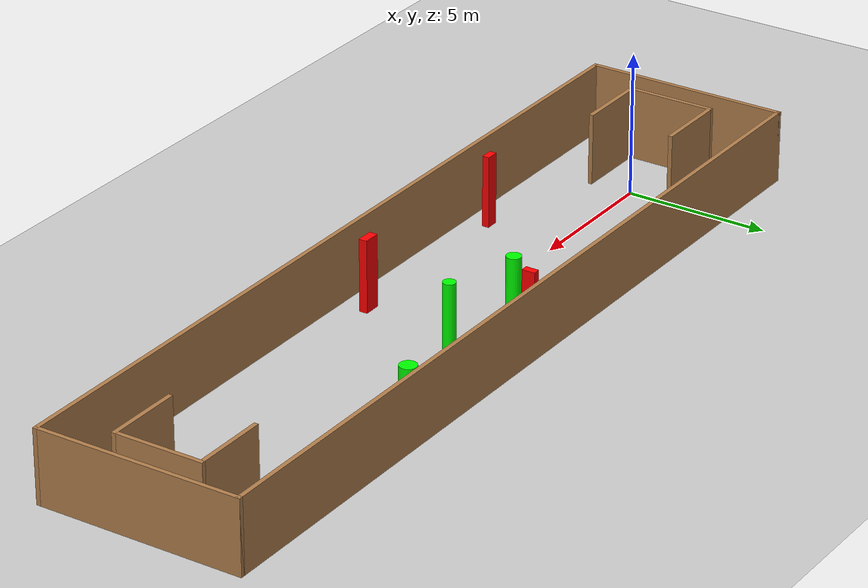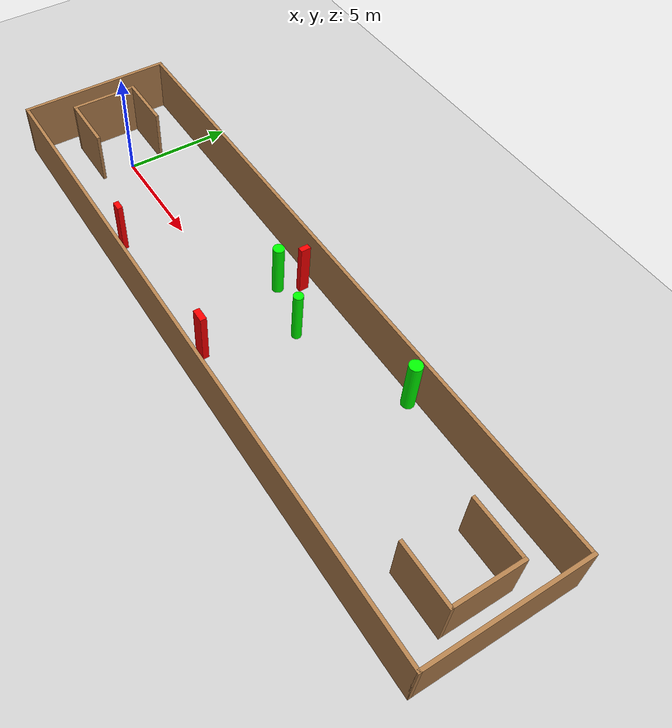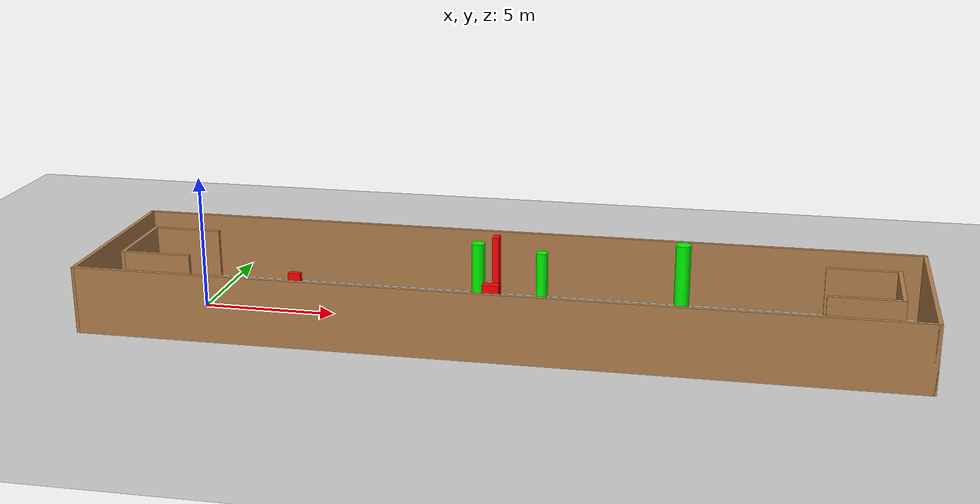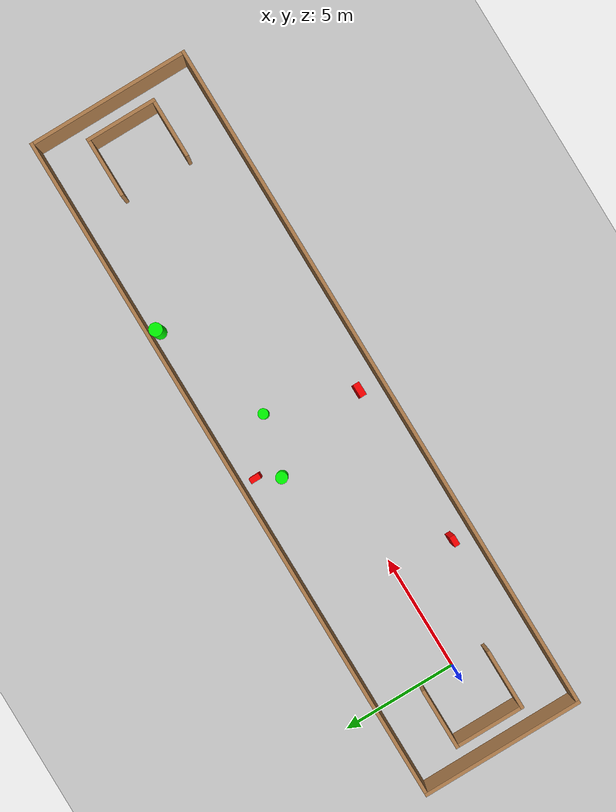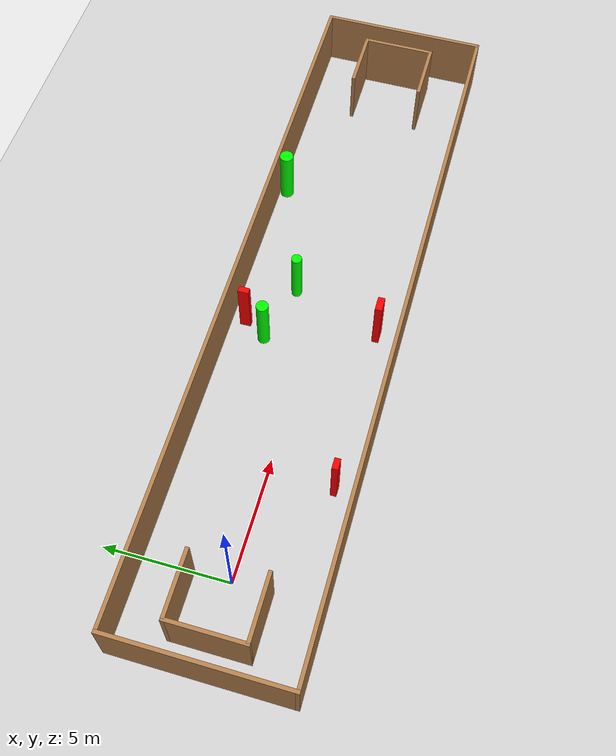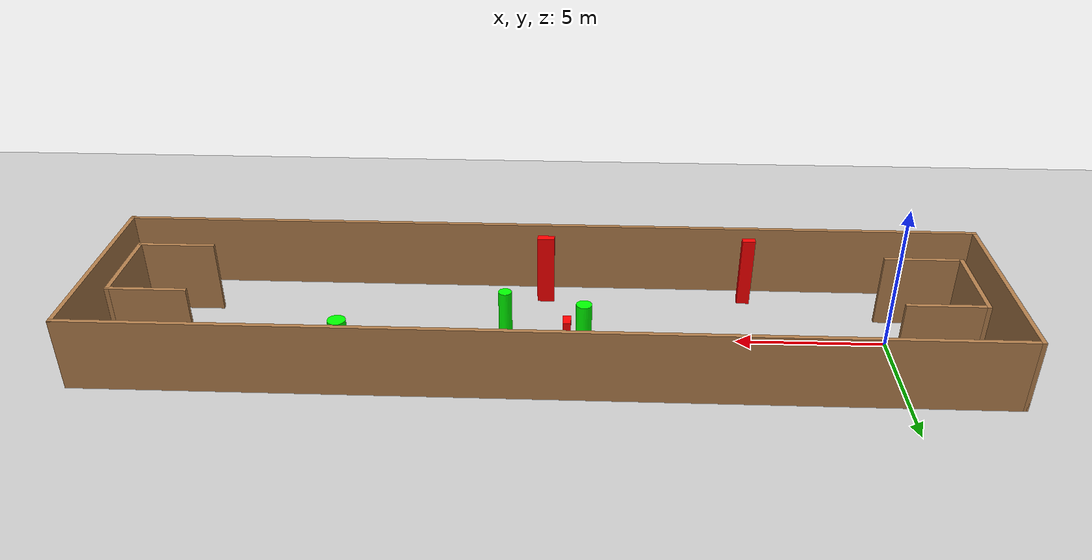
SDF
<sdf version="1.7">
 <world name="default">
  <light name="sun" type="directional">
   <pose>0 0 10 0 -0 0</pose>
   <diffuse>0.8 0.8 0.8 1</diffuse>
   <specular>0.2 0.2 0.2 1</specular>
   <attenuation>
    <range>1000</range>
    <constant>0.9</constant>
    <linear>0.01</linear>
    <quadratic>0.001</quadratic>
   </attenuation>
   <direction>-0.5 0.1 -0.9</direction>
   <spot><inner_angle>0</inner_angle><outer_angle>0</outer_angle><falloff>0</falloff></spot>
  </light>
  <model name="ground_plane">
   <static>1</static>
   <link name="link">
    <collision name="collision">
     <geometry><plane><normal>0 0 1</normal><size>100 100</size></plane></geometry>
     <surface>
      <contact><collide_bitmask>65535</collide_bitmask></contact>
      <friction><ode><mu>100</mu><mu2>50</mu2></ode></friction>
     </surface>
    </collision>
    <visual name="visual">
     <cast_shadows>0</cast_shadows>
     <geometry><plane><normal>0 0 1</normal><size>100 100</size></plane></geometry>
     <material>
      <script><uri>file://media/materials/scripts/gazebo.material</uri><name>Gazebo/Grey</name></script>
     </material>
    </visual>
   </link>
  </model>
  <gravity>0 0 -9.8</gravity>
  <magnetic_field>6e-06 2.3e-05 -4.2e-05</magnetic_field>
  <atmosphere type="adiabatic"/>
  <physics type="ode">
   <max_step_size>0.001</max_step_size>
   <real_time_factor>1</real_time_factor>
   <real_time_update_rate>1000</real_time_update_rate>
  </physics>
  <scene><ambient>0.4 0.4 0.4 1</ambient><background>0.7 0.7 0.7 1</background><shadows>1</shadows></scene>
  <spherical_coordinates>
   <surface_model>EARTH_WGS84</surface_model>
   <latitude_deg>0</latitude_deg>
   <longitude_deg>0</longitude_deg>
   <elevation>0</elevation>
   <heading_deg>0</heading_deg>
  </spherical_coordinates>
  <model name="my_base_walls">
   <link name="Wall_0">
    <collision name="Wall_0_Collision">
     <geometry><box><size>7.15 0.15 2.5</size></box></geometry>
     <pose>0 0 1.25 0 -0 0</pose>
    </collision>
    <visual name="Wall_0_Visual">
     <pose>0 0 1.25 0 -0 0</pose>
     <geometry><box><size>7.15 0.15 2.5</size></box></geometry>
     <material>
      <script><uri>file://media/materials/scripts/gazebo.material</uri><name>Gazebo/Wood</name></script>
      <ambient>1 1 1 1</ambient>
     </material>
     <meta><layer>0</layer></meta>
    </visual>
    <pose>-15 0 0 0 -0 1.5708</pose>
   </link>
   <link name="Wall_10">
    <collision name="Wall_10_Collision">
     <geometry><box><size>2.65 0.15 2.5</size></box></geometry>
     <pose>0 0 1.25 0 -0 0</pose>
    </collision>
    <visual name="Wall_10_Visual">
     <pose>0 0 1.25 0 -0 0</pose>
     <geometry><box><size>2.65 0.15 2.5</size></box></geometry>
     <material>
      <script><uri>file://media/materials/scripts/gazebo.material</uri><name>Gazebo/Wood</name></script>
      <ambient>1 1 1 1</ambient>
     </material>
     <meta><layer>0</layer></meta>
    </visual>
    <pose>-12.75 -1.5 0 0 -0 0</pose>
   </link>
   <link name="Wall_12">
    <collision name="Wall_12_Collision">
     <geometry><box><size>2.65 0.15 2.5</size></box></geometry>
     <pose>0 0 1.25 0 -0 0</pose>
    </collision>
    <visual name="Wall_12_Visual">
     <pose>0 0 1.25 0 -0 0</pose>
     <geometry><box><size>2.65 0.15 2.5</size></box></geometry>
     <material>
      <script><uri>file://media/materials/scripts/gazebo.material</uri><name>Gazebo/Wood</name></script>
      <ambient>1 1 1 1</ambient>
     </material>
     <meta><layer>0</layer></meta>
    </visual>
    <pose>-12.75 1.5 0 0 -0 0</pose>
   </link>
   <link name="Wall_14">
    <collision name="Wall_14_Collision">
     <geometry><box><size>3.15 0.15 2.5</size></box></geometry>
     <pose>0 0 1.25 0 -0 0</pose>
    </collision>
    <visual name="Wall_14_Visual">
     <pose>0 0 1.25 0 -0 0</pose>
     <geometry><box><size>3.15 0.15 2.5</size></box></geometry>
     <material>
      <script><uri>file://media/materials/scripts/gazebo.material</uri><name>Gazebo/Wood</name></script>
      <ambient>1 1 1 1</ambient>
     </material>
     <meta><layer>0</layer></meta>
    </visual>
    <pose>14 0 0 0 -0 -1.5708</pose>
   </link>
   <link name="Wall_15">
    <collision name="Wall_15_Collision">
     <geometry><box><size>2.65 0.15 2.5</size></box></geometry>
     <pose>0 0 1.25 0 -0 0</pose>
    </collision>
    <visual name="Wall_15_Visual">
     <pose>0 0 1.25 0 -0 0</pose>
     <geometry><box><size>2.65 0.15 2.5</size></box></geometry>
     <material>
      <script><uri>file://media/materials/scripts/gazebo.material</uri><name>Gazebo/Wood</name></script>
      <ambient>1 1 1 1</ambient>
     </material>
     <meta><layer>0</layer></meta>
    </visual>
    <pose>12.75 -1.5 0 0 -0 3.14159</pose>
   </link>
   <link name="Wall_17">
    <collision name="Wall_17_Collision">
     <geometry><box><size>2.65 0.15 2.5</size></box></geometry>
     <pose>0 0 1.25 0 -0 0</pose>
    </collision>
    <visual name="Wall_17_Visual">
     <pose>0 0 1.25 0 -0 0</pose>
     <geometry><box><size>2.65 0.15 2.5</size></box></geometry>
     <material>
      <script><uri>file://media/materials/scripts/gazebo.material</uri><name>Gazebo/Wood</name></script>
      <ambient>1 1 1 1</ambient>
     </material>
     <meta><layer>0</layer></meta>
    </visual>
    <pose>12.75 1.5 0 0 -0 3.14159</pose>
   </link>
   <link name="Wall_2">
    <collision name="Wall_2_Collision">
     <geometry><box><size>30.15 0.15 2.5</size></box></geometry>
     <pose>0 0 1.25 0 -0 0</pose>
    </collision>
    <visual name="Wall_2_Visual">
     <pose>0 0 1.25 0 -0 0</pose>
     <geometry><box><size>30.15 0.15 2.5</size></box></geometry>
     <material>
      <script><uri>file://media/materials/scripts/gazebo.material</uri><name>Gazebo/Wood</name></script>
      <ambient>1 1 1 1</ambient>
     </material>
     <meta><layer>0</layer></meta>
    </visual>
    <pose>-0 -3.5 0 0 -0 0</pose>
   </link>
   <link name="Wall_4">
    <collision name="Wall_4_Collision">
     <geometry><box><size>30.15 0.15 2.5</size></box></geometry>
     <pose>0 0 1.25 0 -0 0</pose>
    </collision>
    <visual name="Wall_4_Visual">
     <pose>0 0 1.25 0 -0 0</pose>
     <geometry><box><size>30.15 0.15 2.5</size></box></geometry>
     <material>
      <script><uri>file://media/materials/scripts/gazebo.material</uri><name>Gazebo/Wood</name></script>
      <ambient>1 1 1 1</ambient>
     </material>
     <meta><layer>0</layer></meta>
    </visual>
    <pose>-0 3.5 0 0 -0 0</pose>
   </link>
   <link name="Wall_6">
    <collision name="Wall_6_Collision">
     <geometry><box><size>7.15 0.15 2.5</size></box></geometry>
     <pose>0 0 1.25 0 -0 0</pose>
    </collision>
    <visual name="Wall_6_Visual">
     <pose>0 0 1.25 0 -0 0</pose>
     <geometry><box><size>7.15 0.15 2.5</size></box></geometry>
     <material>
      <script><uri>file://media/materials/scripts/gazebo.material</uri><name>Gazebo/Wood</name></script>
      <ambient>1 1 1 1</ambient>
     </material>
     <meta><layer>0</layer></meta>
    </visual>
    <pose>15 0 0 0 -0 -1.5708</pose>
   </link>
   <link name="Wall_9">
    <collision name="Wall_9_Collision">
     <geometry><box><size>3.15 0.15 2.5</size></box></geometry>
     <pose>0 0 1.25 0 -0 0</pose>
    </collision>
    <visual name="Wall_9_Visual">
     <pose>0 0 1.25 0 -0 0</pose>
     <geometry><box><size>3.15 0.15 2.5</size></box></geometry>
     <material>
      <script><uri>file://media/materials/scripts/gazebo.material</uri><name>Gazebo/Wood</name></script>
      <ambient>1 1 1 1</ambient>
     </material>
     <meta><layer>0</layer></meta>
    </visual>
    <pose>-14 0 0 0 -0 -1.5708</pose>
   </link>
   <static>1</static>
   <pose>11.5 0 0 0 -0 0</pose>
  </model>
  <model name="cylinder1">
   <static>1</static>
   <link name="link">
    <inertial>
     <mass>1</mass>
     <inertia><ixx>0.5</ixx><ixy>0</ixy><ixz>0</ixz><iyy>0.5</iyy><iyz>0</iyz><izz>1</izz></inertia>
    </inertial>
    <collision name="collision">
     <geometry><cylinder><radius>0.2864718964308145</radius><length>2.5</length></cylinder></geometry>
    </collision>
    <visual name="visual">
     <geometry><cylinder><radius>0.2864718964308145</radius><length>2.5</length></cylinder></geometry>
     <material>
      <ambient>0 1 0 1</ambient>
      <diffuse>0 1 0 1</diffuse>
      <specular>0.1 0.1 0.1 1</specular>
      <emissive>0 0 0 0</emissive>
     </material>
    </visual>
   </link>
   <pose>17.728232817294682 3.1218830115783494 1.25 0 0 0</pose>
  </model>
  <model name="cylinder2">
   <static>1</static>
   <link name="link">
    <inertial>
     <mass>1</mass>
     <inertia><ixx>0.5</ixx><ixy>0</ixy><ixz>0</ixz><iyy>0.5</iyy><iyz>0</iyz><izz>1</izz></inertia>
    </inertial>
    <collision name="collision">
     <geometry><cylinder><radius>0.2523031684073014</radius><length>2.5</length></cylinder></geometry>
    </collision>
    <visual name="visual">
     <geometry><cylinder><radius>0.2523031684073014</radius><length>2.5</length></cylinder></geometry>
     <material>
      <ambient>0 1 0 1</ambient>
      <diffuse>0 1 0 1</diffuse>
      <specular>0.1 0.1 0.1 1</specular>
      <emissive>0 0 0 0</emissive>
     </material>
    </visual>
   </link>
   <pose>10.150864386148335 1.9028028505956183 1.25 0 0 0</pose>
  </model>
  <model name="cylinder3">
   <static>1</static>
   <link name="link">
    <inertial>
     <mass>1</mass>
     <inertia><ixx>0.5</ixx><ixy>0</ixy><ixz>0</ixz><iyy>0.5</iyy><iyz>0</iyz><izz>1</izz></inertia>
    </inertial>
    <collision name="collision">
     <geometry><cylinder><radius>0.21693802861221645</radius><length>2.5</length></cylinder></geometry>
    </collision>
    <visual name="visual">
     <geometry><cylinder><radius>0.21693802861221645</radius><length>2.5</length></cylinder></geometry>
     <material>
      <ambient>0 1 0 1</ambient>
      <diffuse>0 1 0 1</diffuse>
      <specular>0.1 0.1 0.1 1</specular>
      <emissive>0 0 0 0</emissive>
     </material>
    </visual>
   </link>
   <pose>12.686786120424621 1.2238617002395342 1.25 0 0 0</pose>
  </model>
  <model name="box1">
   <static>1</static>
   <link name="link">
    <inertial>
     <mass>1</mass>
     <inertia><ixx>0.083</ixx><ixy>0</ixy><ixz>0</ixz><iyy>0.083</iyy><iyz>0</iyz><izz>0.083</izz></inertia>
    </inertial>
    <collision name="collision">
     <geometry><box><size>0.44343891977040606 0.24256501508102396 2.5</size></box></geometry>
    </collision>
    <visual name="visual">
     <geometry><box><size>0.44343891977040606 0.24256501508102396 2.5</size></box></geometry>
     <material>
      <ambient>1 0 0 1</ambient>
      <diffuse>1 0 0 1</diffuse>
      <specular>0.1 0.1 0.1 1</specular>
      <emissive>0 0 0 0</emissive>
     </material>
    </visual>
    <sensor name="my_contact" type="contact">
     <contact><collision>box_collision</collision><topic>__default_topic__</topic></contact>
    </sensor>
   </link>
   <pose>4.475700578638877 -2.6328653962240693 1.25 0 0 0</pose>
  </model>
  <model name="box2">
   <static>1</static>
   <link name="link">
    <inertial>
     <mass>1</mass>
     <inertia><ixx>0.083</ixx><ixy>0</ixy><ixz>0</ixz><iyy>0.083</iyy><iyz>0</iyz><izz>0.083</izz></inertia>
    </inertial>
    <collision name="collision">
     <geometry><box><size>0.24701066324926166 0.4475986479998705 2.5</size></box></geometry>
    </collision>
    <visual name="visual">
     <geometry><box><size>0.24701066324926166 0.4475986479998705 2.5</size></box></geometry>
     <material>
      <ambient>1 0 0 1</ambient>
      <diffuse>1 0 0 1</diffuse>
      <specular>0.1 0.1 0.1 1</specular>
      <emissive>0 0 0 0</emissive>
     </material>
    </visual>
    <sensor name="my_contact" type="contact">
     <contact><collision>box_collision</collision><topic>__default_topic__</topic></contact>
    </sensor>
   </link>
   <pose>10.67068187379597 2.8224915502824537 1.25 0 0 0</pose>
  </model>
  <model name="box3">
   <static>1</static>
   <link name="link">
    <inertial>
     <mass>1</mass>
     <inertia><ixx>0.083</ixx><ixy>0</ixy><ixz>0</ixz><iyy>0.083</iyy><iyz>0</iyz><izz>0.083</izz></inertia>
    </inertial>
    <collision name="collision">
     <geometry><box><size>0.5915223792908373 0.2829899775017246 2.5</size></box></geometry>
    </collision>
    <visual name="visual">
     <geometry><box><size>0.5915223792908373 0.2829899775017246 2.5</size></box></geometry>
     <material>
      <ambient>1 0 0 1</ambient>
      <diffuse>1 0 0 1</diffuse>
      <specular>0.1 0.1 0.1 1</specular>
      <emissive>0 0 0 0</emissive>
     </material>
    </visual>
    <sensor name="my_contact" type="contact">
     <contact><collision>box_collision</collision><topic>__default_topic__</topic></contact>
    </sensor>
   </link>
   <pose>11.517970735392725 -2.530258255539498 1.25 0 0 0</pose>
  </model>
 </world>
</sdf>
